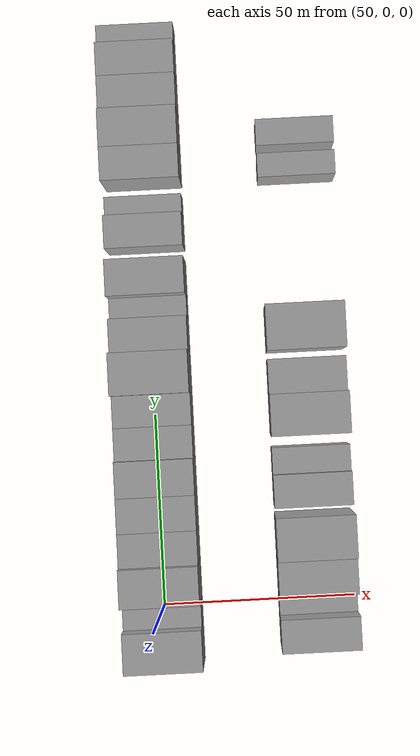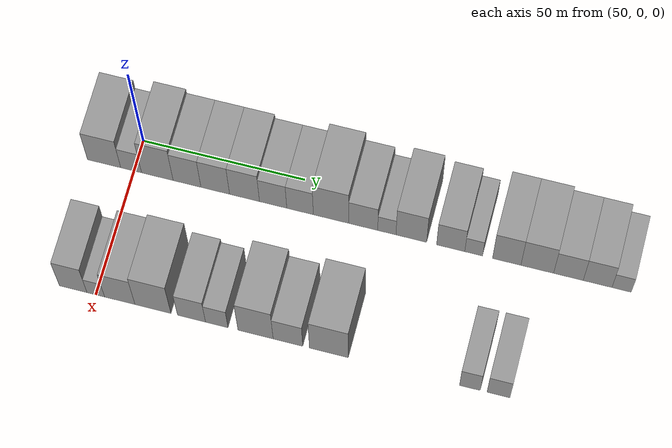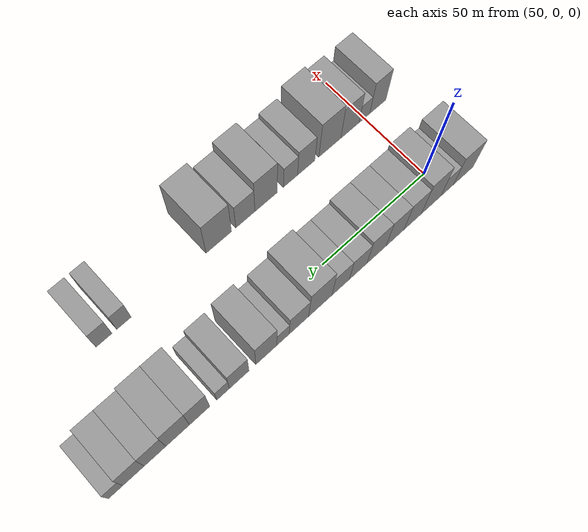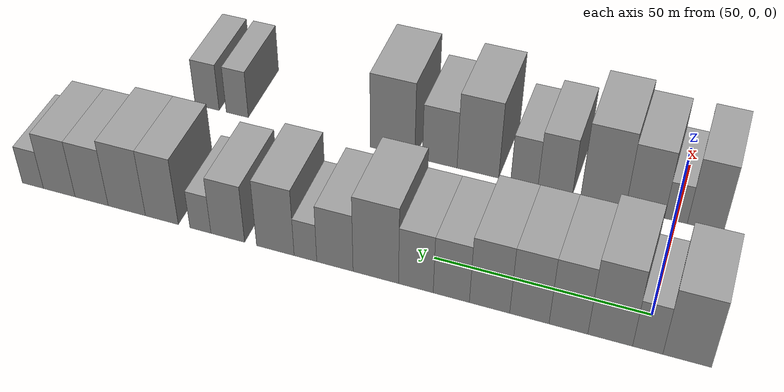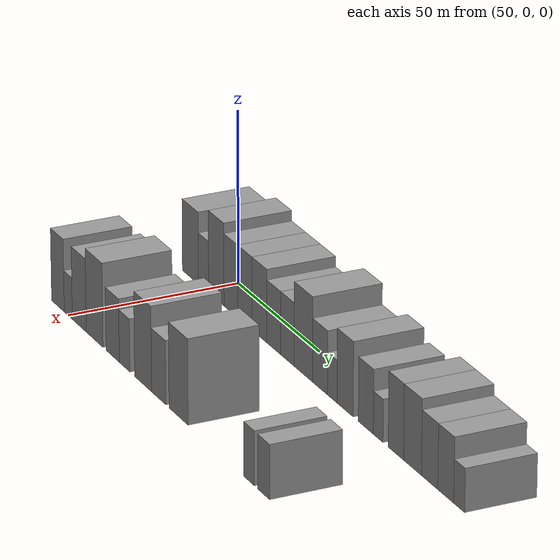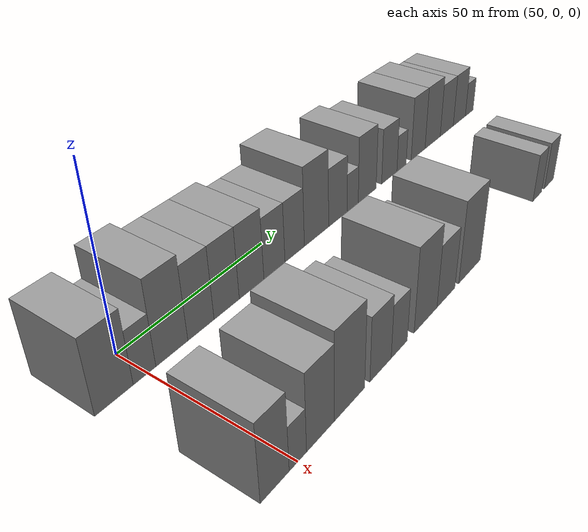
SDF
<sdf version="1.6">
 <world name="default">
  <model name="building_29">
   <static>1</static>
   <pose>50.0000 -9.3427 0 0.000000 0.000000 0.000000</pose>
   <link name="link">
    <pose>0 0 10.50 0 0 0</pose>
    <collision name="collision"><geometry><box><size>20.0000 10.3411 21.0000</size></box></geometry></collision>
    <visual name="visual">
     <cast_shadows>0</cast_shadows>
     <geometry><box><size>20.0000 10.3411 21.0000</size></box></geometry>
     <material>
      <script>
       <uri>model://grey_wall/materials/scripts</uri>
       <uri>model://grey_wall/materials/textures</uri>
       <name>vrc/grey_wall</name>
      </script>
     </material>
    </visual>
   </link>
  </model>
  <model name="building_30">
   <static>1</static>
   <pose>50.0000 -0.9263 0 0.000000 0.000000 0.000000</pose>
   <link name="link">
    <pose>0 0 7.50 0 0 0</pose>
    <collision name="collision"><geometry><box><size>20.0000 6.4915 15.0000</size></box></geometry></collision>
    <visual name="visual">
     <cast_shadows>0</cast_shadows>
     <geometry><box><size>20.0000 6.4915 15.0000</size></box></geometry>
     <material>
      <script>
       <uri>model://grey_wall/materials/scripts</uri>
       <uri>model://grey_wall/materials/textures</uri>
       <name>vrc/grey_wall</name>
      </script>
     </material>
    </visual>
   </link>
  </model>
  <model name="building_31">
   <static>1</static>
   <pose>50.0000 7.2069 0 0.000000 0.000000 0.000000</pose>
   <link name="link">
    <pose>0 0 12.00 0 0 0</pose>
    <collision name="collision"><geometry><box><size>20.0000 9.7750 24.0000</size></box></geometry></collision>
    <visual name="visual">
     <cast_shadows>0</cast_shadows>
     <geometry><box><size>20.0000 9.7750 24.0000</size></box></geometry>
     <material>
      <script>
       <uri>model://grey_wall/materials/scripts</uri>
       <uri>model://grey_wall/materials/textures</uri>
       <name>vrc/grey_wall</name>
      </script>
     </material>
    </visual>
   </link>
  </model>
  <model name="building_32">
   <static>1</static>
   <pose>50.0000 16.3953 0 0.000000 0.000000 0.000000</pose>
   <link name="link">
    <pose>0 0 10.50 0 0 0</pose>
    <collision name="collision"><geometry><box><size>20.0000 8.6017 21.0000</size></box></geometry></collision>
    <visual name="visual">
     <cast_shadows>0</cast_shadows>
     <geometry><box><size>20.0000 8.6017 21.0000</size></box></geometry>
     <material>
      <script>
       <uri>model://grey_wall/materials/scripts</uri>
       <uri>model://grey_wall/materials/textures</uri>
       <name>vrc/grey_wall</name>
      </script>
     </material>
    </visual>
   </link>
  </model>
  <model name="building_33">
   <static>1</static>
   <pose>50.0000 25.1196 0 0.000000 0.000000 0.000000</pose>
   <link name="link">
    <pose>0 0 10.50 0 0 0</pose>
    <collision name="collision"><geometry><box><size>20.0000 8.8470 21.0000</size></box></geometry></collision>
    <visual name="visual">
     <cast_shadows>0</cast_shadows>
     <geometry><box><size>20.0000 8.8470 21.0000</size></box></geometry>
     <material>
      <script>
       <uri>model://grey_wall/materials/scripts</uri>
       <uri>model://grey_wall/materials/textures</uri>
       <name>vrc/grey_wall</name>
      </script>
     </material>
    </visual>
   </link>
  </model>
  <model name="building_34">
   <static>1</static>
   <pose>50.0000 34.1502 0 0.000000 0.000000 0.000000</pose>
   <link name="link">
    <pose>0 0 10.50 0 0 0</pose>
    <collision name="collision"><geometry><box><size>20.0000 9.2142 21.0000</size></box></geometry></collision>
    <visual name="visual">
     <cast_shadows>0</cast_shadows>
     <geometry><box><size>20.0000 9.2142 21.0000</size></box></geometry>
     <material>
      <script>
       <uri>model://grey_wall/materials/scripts</uri>
       <uri>model://grey_wall/materials/textures</uri>
       <name>vrc/grey_wall</name>
      </script>
     </material>
    </visual>
   </link>
  </model>
  <model name="building_35">
   <static>1</static>
   <pose>50.0000 42.9496 0 0.000000 0.000000 0.000000</pose>
   <link name="link">
    <pose>0 0 9.00 0 0 0</pose>
    <collision name="collision"><geometry><box><size>20.0000 8.3844 18.0000</size></box></geometry></collision>
    <visual name="visual">
     <cast_shadows>0</cast_shadows>
     <geometry><box><size>20.0000 8.3844 18.0000</size></box></geometry>
     <material>
      <script>
       <uri>model://grey_wall/materials/scripts</uri>
       <uri>model://grey_wall/materials/textures</uri>
       <name>vrc/grey_wall</name>
      </script>
     </material>
    </visual>
   </link>
  </model>
  <model name="building_36">
   <static>1</static>
   <pose>50.0000 51.2232 0 0.000000 0.000000 0.000000</pose>
   <link name="link">
    <pose>0 0 9.00 0 0 0</pose>
    <collision name="collision"><geometry><box><size>20.0000 8.1629 18.0000</size></box></geometry></collision>
    <visual name="visual">
     <cast_shadows>0</cast_shadows>
     <geometry><box><size>20.0000 8.1629 18.0000</size></box></geometry>
     <material>
      <script>
       <uri>model://grey_wall/materials/scripts</uri>
       <uri>model://grey_wall/materials/textures</uri>
       <name>vrc/grey_wall</name>
      </script>
     </material>
    </visual>
   </link>
  </model>
  <model name="building_37">
   <static>1</static>
   <pose>50.0000 60.7332 0 0.000000 0.000000 0.000000</pose>
   <link name="link">
    <pose>0 0 12.00 0 0 0</pose>
    <collision name="collision"><geometry><box><size>20.0000 10.8570 24.0000</size></box></geometry></collision>
    <visual name="visual">
     <cast_shadows>0</cast_shadows>
     <geometry><box><size>20.0000 10.8570 24.0000</size></box></geometry>
     <material>
      <script>
       <uri>model://grey_wall/materials/scripts</uri>
       <uri>model://grey_wall/materials/textures</uri>
       <name>vrc/grey_wall</name>
      </script>
     </material>
    </visual>
   </link>
  </model>
  <model name="building_38">
   <static>1</static>
   <pose>50.0000 70.5709 0 0.000000 0.000000 0.000000</pose>
   <link name="link">
    <pose>0 0 9.00 0 0 0</pose>
    <collision name="collision"><geometry><box><size>20.0000 8.8184 18.0000</size></box></geometry></collision>
    <visual name="visual">
     <cast_shadows>0</cast_shadows>
     <geometry><box><size>20.0000 8.8184 18.0000</size></box></geometry>
     <material>
      <script>
       <uri>model://grey_wall/materials/scripts</uri>
       <uri>model://grey_wall/materials/textures</uri>
       <name>vrc/grey_wall</name>
      </script>
     </material>
    </visual>
   </link>
  </model>
  <model name="building_39">
   <static>1</static>
   <pose>50.0000 77.7623 0 0.000000 0.000000 0.000000</pose>
   <link name="link">
    <pose>0 0 6.00 0 0 0</pose>
    <collision name="collision"><geometry><box><size>20.0000 5.5645 12.0000</size></box></geometry></collision>
    <visual name="visual">
     <cast_shadows>0</cast_shadows>
     <geometry><box><size>20.0000 5.5645 12.0000</size></box></geometry>
     <material>
      <script>
       <uri>model://grey_wall/materials/scripts</uri>
       <uri>model://grey_wall/materials/textures</uri>
       <name>vrc/grey_wall</name>
      </script>
     </material>
    </visual>
   </link>
  </model>
  <model name="building_40">
   <static>1</static>
   <pose>50.0000 85.2182 0 0.000000 0.000000 0.000000</pose>
   <link name="link">
    <pose>0 0 10.50 0 0 0</pose>
    <collision name="collision"><geometry><box><size>20.0000 9.3475 21.0000</size></box></geometry></collision>
    <visual name="visual">
     <cast_shadows>0</cast_shadows>
     <geometry><box><size>20.0000 9.3475 21.0000</size></box></geometry>
     <material>
      <script>
       <uri>model://grey_wall/materials/scripts</uri>
       <uri>model://grey_wall/materials/textures</uri>
       <name>vrc/grey_wall</name>
      </script>
     </material>
    </visual>
   </link>
  </model>
  <model name="building_41">
   <static>1</static>
   <pose>50.0000 97.1692 0 0.000000 0.000000 0.000000</pose>
   <link name="link">
    <pose>0 0 9.00 0 0 0</pose>
    <collision name="collision"><geometry><box><size>20.0000 8.5545 18.0000</size></box></geometry></collision>
    <visual name="visual">
     <cast_shadows>0</cast_shadows>
     <geometry><box><size>20.0000 8.5545 18.0000</size></box></geometry>
     <material>
      <script>
       <uri>model://grey_wall/materials/scripts</uri>
       <uri>model://grey_wall/materials/textures</uri>
       <name>vrc/grey_wall</name>
      </script>
     </material>
    </visual>
   </link>
  </model>
  <model name="building_42">
   <static>1</static>
   <pose>50.0000 104.1438 0 0.000000 0.000000 0.000000</pose>
   <link name="link">
    <pose>0 0 6.00 0 0 0</pose>
    <collision name="collision"><geometry><box><size>20.0000 5.3945 12.0000</size></box></geometry></collision>
    <visual name="visual">
     <cast_shadows>0</cast_shadows>
     <geometry><box><size>20.0000 5.3945 12.0000</size></box></geometry>
     <material>
      <script>
       <uri>model://grey_wall/materials/scripts</uri>
       <uri>model://grey_wall/materials/textures</uri>
       <name>vrc/grey_wall</name>
      </script>
     </material>
    </visual>
   </link>
  </model>
  <model name="building_43">
   <static>1</static>
   <pose>50.0000 114.1314 0 0.000000 0.000000 0.000000</pose>
   <link name="link">
    <pose>0 0 10.50 0 0 0</pose>
    <collision name="collision"><geometry><box><size>20.0000 8.5808 21.0000</size></box></geometry></collision>
    <visual name="visual">
     <cast_shadows>0</cast_shadows>
     <geometry><box><size>20.0000 8.5808 21.0000</size></box></geometry>
     <material>
      <script>
       <uri>model://grey_wall/materials/scripts</uri>
       <uri>model://grey_wall/materials/textures</uri>
       <name>vrc/grey_wall</name>
      </script>
     </material>
    </visual>
   </link>
  </model>
  <model name="building_44">
   <static>1</static>
   <pose>50.0000 123.3507 0 0.000000 0.000000 0.000000</pose>
   <link name="link">
    <pose>0 0 10.50 0 0 0</pose>
    <collision name="collision"><geometry><box><size>20.0000 9.8578 21.0000</size></box></geometry></collision>
    <visual name="visual">
     <cast_shadows>0</cast_shadows>
     <geometry><box><size>20.0000 9.8578 21.0000</size></box></geometry>
     <material>
      <script>
       <uri>model://grey_wall/materials/scripts</uri>
       <uri>model://grey_wall/materials/textures</uri>
       <name>vrc/grey_wall</name>
      </script>
     </material>
    </visual>
   </link>
  </model>
  <model name="building_45">
   <static>1</static>
   <pose>50.0000 132.7346 0 0.000000 0.000000 0.000000</pose>
   <link name="link">
    <pose>0 0 9.00 0 0 0</pose>
    <collision name="collision"><geometry><box><size>20.0000 8.9099 18.0000</size></box></geometry></collision>
    <visual name="visual">
     <cast_shadows>0</cast_shadows>
     <geometry><box><size>20.0000 8.9099 18.0000</size></box></geometry>
     <material>
      <script>
       <uri>model://grey_wall/materials/scripts</uri>
       <uri>model://grey_wall/materials/textures</uri>
       <name>vrc/grey_wall</name>
      </script>
     </material>
    </visual>
   </link>
  </model>
  <model name="building_46">
   <static>1</static>
   <pose>50.0000 141.5011 0 0.000000 0.000000 0.000000</pose>
   <link name="link">
    <pose>0 0 9.00 0 0 0</pose>
    <collision name="collision"><geometry><box><size>20.0000 8.6232 18.0000</size></box></geometry></collision>
    <visual name="visual">
     <cast_shadows>0</cast_shadows>
     <geometry><box><size>20.0000 8.6232 18.0000</size></box></geometry>
     <material>
      <script>
       <uri>model://grey_wall/materials/scripts</uri>
       <uri>model://grey_wall/materials/textures</uri>
       <name>vrc/grey_wall</name>
      </script>
     </material>
    </visual>
   </link>
  </model>
  <model name="building_47">
   <static>1</static>
   <pose>50.0000 148.7037 0 0.000000 0.000000 0.000000</pose>
   <link name="link">
    <pose>0 0 6.00 0 0 0</pose>
    <collision name="collision"><geometry><box><size>20.0000 5.7819 12.0000</size></box></geometry></collision>
    <visual name="visual">
     <cast_shadows>0</cast_shadows>
     <geometry><box><size>20.0000 5.7819 12.0000</size></box></geometry>
     <material>
      <script>
       <uri>model://grey_wall/materials/scripts</uri>
       <uri>model://grey_wall/materials/textures</uri>
       <name>vrc/grey_wall</name>
      </script>
     </material>
    </visual>
   </link>
  </model>
  <model name="building_96">
   <static>1</static>
   <pose>90.0000 -6.8732 0 0.000000 0.000000 0.000000</pose>
   <link name="link">
    <pose>0 0 10.50 0 0 0</pose>
    <collision name="collision"><geometry><box><size>20.0000 8.4338 21.0000</size></box></geometry></collision>
    <visual name="visual">
     <cast_shadows>0</cast_shadows>
     <geometry><box><size>20.0000 8.4338 21.0000</size></box></geometry>
     <material>
      <script>
       <uri>model://grey_wall/materials/scripts</uri>
       <uri>model://grey_wall/materials/textures</uri>
       <name>vrc/grey_wall</name>
      </script>
     </material>
    </visual>
   </link>
  </model>
  <model name="building_97">
   <static>1</static>
   <pose>90.0000 0.0352 0 0.000000 0.000000 0.000000</pose>
   <link name="link">
    <pose>0 0 6.00 0 0 0</pose>
    <collision name="collision"><geometry><box><size>20.0000 5.3831 12.0000</size></box></geometry></collision>
    <visual name="visual">
     <cast_shadows>0</cast_shadows>
     <geometry><box><size>20.0000 5.3831 12.0000</size></box></geometry>
     <material>
      <script>
       <uri>model://grey_wall/materials/scripts</uri>
       <uri>model://grey_wall/materials/textures</uri>
       <name>vrc/grey_wall</name>
      </script>
     </material>
    </visual>
   </link>
  </model>
  <model name="building_98">
   <static>1</static>
   <pose>90.0000 7.3575 0 0.000000 0.000000 0.000000</pose>
   <link name="link">
    <pose>0 0 10.50 0 0 0</pose>
    <collision name="collision"><geometry><box><size>20.0000 9.2614 21.0000</size></box></geometry></collision>
    <visual name="visual">
     <cast_shadows>0</cast_shadows>
     <geometry><box><size>20.0000 9.2614 21.0000</size></box></geometry>
     <material>
      <script>
       <uri>model://grey_wall/materials/scripts</uri>
       <uri>model://grey_wall/materials/textures</uri>
       <name>vrc/grey_wall</name>
      </script>
     </material>
    </visual>
   </link>
  </model>
  <model name="building_99">
   <static>1</static>
   <pose>90.0000 17.4516 0 0.000000 0.000000 0.000000</pose>
   <link name="link">
    <pose>0 0 12.00 0 0 0</pose>
    <collision name="collision"><geometry><box><size>20.0000 10.9268 24.0000</size></box></geometry></collision>
    <visual name="visual">
     <cast_shadows>0</cast_shadows>
     <geometry><box><size>20.0000 10.9268 24.0000</size></box></geometry>
     <material>
      <script>
       <uri>model://grey_wall/materials/scripts</uri>
       <uri>model://grey_wall/materials/textures</uri>
       <name>vrc/grey_wall</name>
      </script>
     </material>
    </visual>
   </link>
  </model>
  <model name="building_100">
   <static>1</static>
   <pose>90.0000 29.1551 0 0.000000 0.000000 0.000000</pose>
   <link name="link">
    <pose>0 0 9.00 0 0 0</pose>
    <collision name="collision"><geometry><box><size>20.0000 8.4802 18.0000</size></box></geometry></collision>
    <visual name="visual">
     <cast_shadows>0</cast_shadows>
     <geometry><box><size>20.0000 8.4802 18.0000</size></box></geometry>
     <material>
      <script>
       <uri>model://grey_wall/materials/scripts</uri>
       <uri>model://grey_wall/materials/textures</uri>
       <name>vrc/grey_wall</name>
      </script>
     </material>
    </visual>
   </link>
  </model>
  <model name="building_101">
   <static>1</static>
   <pose>90.0000 36.7968 0 0.000000 0.000000 0.000000</pose>
   <link name="link">
    <pose>0 0 7.50 0 0 0</pose>
    <collision name="collision"><geometry><box><size>20.0000 6.8031 15.0000</size></box></geometry></collision>
    <visual name="visual">
     <cast_shadows>0</cast_shadows>
     <geometry><box><size>20.0000 6.8031 15.0000</size></box></geometry>
     <material>
      <script>
       <uri>model://grey_wall/materials/scripts</uri>
       <uri>model://grey_wall/materials/textures</uri>
       <name>vrc/grey_wall</name>
      </script>
     </material>
    </visual>
   </link>
  </model>
  <model name="building_102">
   <static>1</static>
   <pose>90.0000 48.5049 0 0.000000 0.000000 0.000000</pose>
   <link name="link">
    <pose>0 0 12.00 0 0 0</pose>
    <collision name="collision"><geometry><box><size>20.0000 10.6131 24.0000</size></box></geometry></collision>
    <visual name="visual">
     <cast_shadows>0</cast_shadows>
     <geometry><box><size>20.0000 10.6131 24.0000</size></box></geometry>
     <material>
      <script>
       <uri>model://grey_wall/materials/scripts</uri>
       <uri>model://grey_wall/materials/textures</uri>
       <name>vrc/grey_wall</name>
      </script>
     </material>
    </visual>
   </link>
  </model>
  <model name="building_103">
   <static>1</static>
   <pose>90.0000 58.2677 0 0.000000 0.000000 0.000000</pose>
   <link name="link">
    <pose>0 0 9.00 0 0 0</pose>
    <collision name="collision"><geometry><box><size>20.0000 8.9125 18.0000</size></box></geometry></collision>
    <visual name="visual">
     <cast_shadows>0</cast_shadows>
     <geometry><box><size>20.0000 8.9125 18.0000</size></box></geometry>
     <material>
      <script>
       <uri>model://grey_wall/materials/scripts</uri>
       <uri>model://grey_wall/materials/textures</uri>
       <name>vrc/grey_wall</name>
      </script>
     </material>
    </visual>
   </link>
  </model>
  <model name="building_104">
   <static>1</static>
   <pose>90.0000 70.5513 0 0.000000 0.000000 0.000000</pose>
   <link name="link">
    <pose>0 0 12.00 0 0 0</pose>
    <collision name="collision"><geometry><box><size>20.0000 11.6547 24.0000</size></box></geometry></collision>
    <visual name="visual">
     <cast_shadows>0</cast_shadows>
     <geometry><box><size>20.0000 11.6547 24.0000</size></box></geometry>
     <material>
      <script>
       <uri>model://grey_wall/materials/scripts</uri>
       <uri>model://grey_wall/materials/textures</uri>
       <name>vrc/grey_wall</name>
      </script>
     </material>
    </visual>
   </link>
  </model>
  <model name="building_105">
   <static>1</static>
   <pose>90.0000 112.6288 0 0.000000 0.000000 0.000000</pose>
   <link name="link">
    <pose>0 0 7.50 0 0 0</pose>
    <collision name="collision"><geometry><box><size>20.0000 6.1668 15.0000</size></box></geometry></collision>
    <visual name="visual">
     <cast_shadows>0</cast_shadows>
     <geometry><box><size>20.0000 6.1668 15.0000</size></box></geometry>
     <material>
      <script>
       <uri>model://grey_wall/materials/scripts</uri>
       <uri>model://grey_wall/materials/textures</uri>
       <name>vrc/grey_wall</name>
      </script>
     </material>
    </visual>
   </link>
  </model>
  <model name="building_106">
   <static>1</static>
   <pose>90.0000 121.1054 0 0.000000 0.000000 0.000000</pose>
   <link name="link">
    <pose>0 0 7.50 0 0 0</pose>
    <collision name="collision"><geometry><box><size>20.0000 6.7864 15.0000</size></box></geometry></collision>
    <visual name="visual">
     <cast_shadows>0</cast_shadows>
     <geometry><box><size>20.0000 6.7864 15.0000</size></box></geometry>
     <material>
      <script>
       <uri>model://grey_wall/materials/scripts</uri>
       <uri>model://grey_wall/materials/textures</uri>
       <name>vrc/grey_wall</name>
      </script>
     </material>
    </visual>
   </link>
  </model>
 </world>
</sdf>
